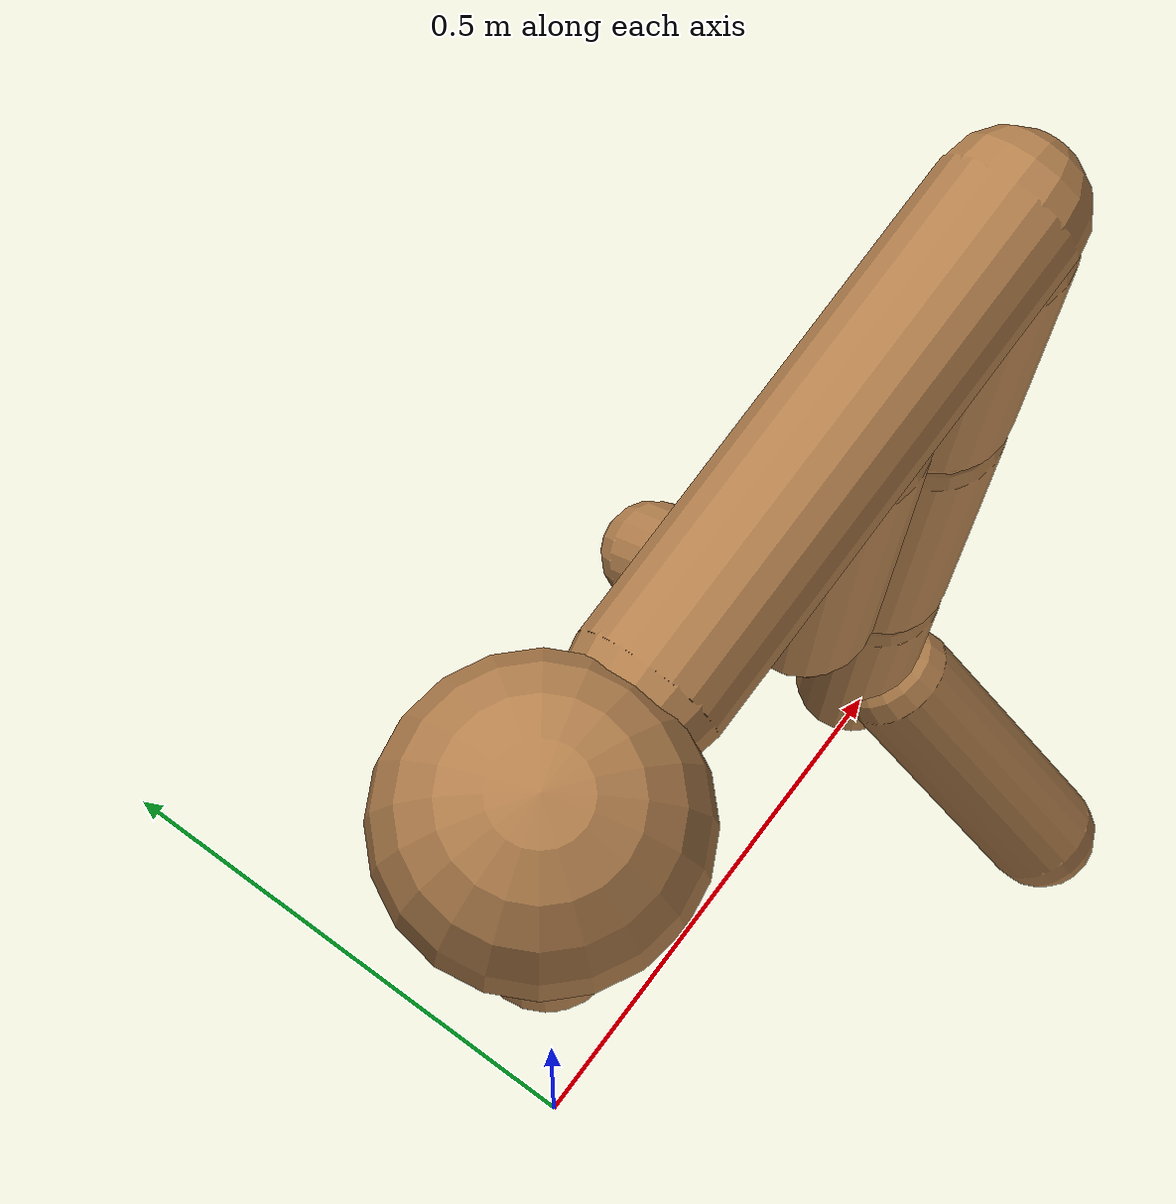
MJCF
<?xml version='1.0' encoding='UTF-8'?>
<!-- Universal Animal Template: unimal -->
<mujoco model="unimal">
  <compiler angle="degree"/>
  <size njmax="2000" nconmax="500"/>
  <option timestep=".005">
    <flag filterparent="disable"/>
  </option>
  <!-- Common defaults to make search space tractable -->
  <default>
    <!-- Define motor defaults -->
    <motor ctrlrange="-1 1" ctrllimited="true"/>
    <!-- Define joint defaults -->
    <default class="normal_joint">
      <joint type="hinge" damping="1" stiffness="1" armature="1" limited="true" range="-120 120" solimplimit="0 0.99 0.01"/>
    </default>
    <default class="walker_joint">
      <joint type="hinge" damping="0.2" stiffness="1" armature=".01" limited="true" range="-120 120" solimplimit="0 0.99 0.01"/>
    </default>
    <default class="stiff_joint">
      <joint type="hinge" damping="5" stiffness="10" armature=".01" limited="true" solimplimit="0 0.99 0.01"/>
    </default>
    <default class="free">
      <joint limited="false" damping="0" armature="0" stiffness="0"/>
    </default>
    <default class="growth_site">
      <site size="1e-6 1e-6 1e-6"/>
    </default>
    <default class="torso_growth_site">
      <site size="1e-6 1e-6 1e-6"/>
    </default>
    <default class="mirror_growth_site">
      <site size="1e-6 1e-6 1e-6"/>
    </default>
    <default class="btm_pos_site">
      <site size="1e-6 1e-6 1e-6"/>
    </default>
    <default class="box_face_site">
      <site size="1e-6 1e-6 1e-6"/>
    </default>
    <default class="imu_vel">
      <site type="box" size="0.05" rgba="1 0 0 0"/>
    </default>
    <default class="touch_site">
      <site group="3" rgba="0 0 1 .3"/>
    </default>
    <default class="food_site">
      <site material="food" size="0.15"/>
    </default>
    <!-- Define geom defaults -->
    <geom type="capsule" condim="3" friction="0.7 0.1 0.1" material="self"/>
  </default>
  <worldbody>
    <light diffuse="1 1 1" directional="true" exponent="1" pos="0 0 8" specular="0.1 0.1 0.1" dir="0 0 -1"/>
    <!-- Programatically generated xml goes here -->
    <body name="torso/0" pos="0 0 1.6">
      <joint name="root" type="free" class="free"/>
      <site name="root" class="imu_vel"/>
      <geom name="torso/0" type="sphere" size="0.1" condim="3" density="900"/>
      <camera name="side" pos="0 -7 2" xyaxes="1 0 0 0 1 2" mode="trackcom"/>
      <site name="torso/0" class="growth_site" pos="0 0 0"/>
      <site name="torso/btm_pos/0" class="btm_pos_site" pos="0 0 -0.1"/>
      <site name="torso/touch/0" class="touch_site" size="0.11"/>
      <site name="torso/vertical/0" class="torso_growth_site" pos="0 0 -0.1"/>
      <body name="limb/6" pos="0.1 0.0 0.0">
        <joint name="limbx/6" type="hinge" class="normal_joint" range="-30 0" pos="-0.05 0.0 0.0" axis="0.0 0.0 1.0"/>
        <joint name="limby/6" type="hinge" class="normal_joint" range="-90 0" pos="-0.05 0.0 0.0" axis="-0.0 1.0 0.0"/>
        <geom name="limb/6" type="capsule" fromto="0.0 0.0 0.0 0.35 0.0 0.0" size="0.05" density="800"/>
        <site name="limb/mid/6" class="growth_site" pos="0.2 0.0 0.0"/>
        <site name="limb/btm/6" class="growth_site" pos="0.35 0.0 0.0"/>
        <site name="limb/btm_pos/6" class="btm_pos_site" pos="0.35 0.0 0.0"/>
        <site name="limb/touch/6" class="touch_site" size="0.060000000000000005" fromto="0.0 0.0 0.0 0.35 0.0 0.0" type="capsule"/>
        <body name="limb/16" pos="0.35 0.0 -0.05">
          <joint name="limbx/16" type="hinge" class="normal_joint" range="-90 0" pos="0.0 0.0 0.05" axis="1.0 0.0 0.0"/>
          <joint name="limby/16" type="hinge" class="normal_joint" range="-30 0" pos="0.0 0.0 0.05" axis="0.0 1.0 0.0"/>
          <geom name="limb/16" type="capsule" fromto="0.0 0.0 0.0 0.0 0.0 -0.35" size="0.05" density="800"/>
          <site name="limb/mid/16" class="growth_site" pos="0.0 0.0 -0.2"/>
          <site name="limb/btm/16" class="growth_site" pos="0.0 0.0 -0.35"/>
          <site name="limb/btm_pos/16" class="btm_pos_site" pos="0.0 0.0 -0.35"/>
          <site name="limb/touch/16" class="touch_site" size="0.060000000000000005" fromto="0.0 0.0 0.0 0.0 0.0 -0.35" type="capsule"/>
          <body name="limb/17" pos="0.0 0.0 -0.39999999999999997">
            <joint name="limby/17" type="hinge" class="normal_joint" range="0 60" pos="0.0 0.0 0.05" axis="0.0 1.0 0.0"/>
            <geom name="limb/17" type="capsule" fromto="0.0 0.0 0.0 0.0 0.0 -0.45" size="0.05" density="800"/>
            <site name="limb/mid/17" class="growth_site" pos="0.0 0.0 -0.25"/>
            <site name="limb/btm/17" class="growth_site" pos="0.0 0.0 -0.45"/>
            <site name="limb/btm_pos/17" class="btm_pos_site" pos="0.0 0.0 -0.45"/>
            <site name="limb/touch/17" class="touch_site" size="0.060000000000000005" fromto="0.0 0.0 0.0 0.0 0.0 -0.45" type="capsule"/>
            <body name="limb/18" pos="0.0 0.0 -0.5">
              <joint name="limbx/18" type="hinge" class="normal_joint" range="-30 60" pos="0.0 0.0 0.05" axis="1.0 0.0 0.0"/>
              <geom name="limb/18" type="capsule" fromto="0.0 0.0 0.0 0.0 0.0 -0.35" size="0.05" density="800"/>
              <site name="limb/mid/18" class="growth_site" pos="0.0 0.0 -0.2"/>
              <site name="limb/btm/18" class="growth_site" pos="0.0 0.0 -0.35"/>
              <site name="limb/btm_pos/18" class="btm_pos_site" pos="0.0 0.0 -0.35"/>
              <site name="limb/touch/18" class="touch_site" size="0.060000000000000005" fromto="0.0 0.0 0.0 0.0 0.0 -0.35" type="capsule"/>
              <body name="limb/25" pos="0.0 0.04 -0.24000000000000002">
                <joint name="limbx/25" type="hinge" class="normal_joint" range="-90 0" pos="0.0 -0.04 0.04" axis="1.0 0.0 0.0"/>
                <geom name="limb/25" type="capsule" fromto="0.0 0.0 0.0 0.0 0.18 -0.18" size="0.05" density="800"/>
                <site name="limb/mid/25" class="mirror_growth_site" pos="0.0 0.11 -0.11"/>
                <site name="limb/btm/25" class="mirror_growth_site" pos="0.0 0.18 -0.18"/>
                <site name="limb/btm_pos/25" class="btm_pos_site" pos="0.0 0.21 -0.21"/>
                <site name="limb/touch/25" class="touch_site" size="0.060000000000000005" fromto="0.0 0.0 0.0 0.0 0.18 -0.18" type="capsule"/>
              </body>
              <body name="limb/26" pos="0.0 -0.04 -0.24000000000000002">
                <joint name="limbx/26" type="hinge" class="normal_joint" range="-90 0" pos="0.0 0.04 0.04" axis="1.0 0.0 -0.0"/>
                <geom name="limb/26" type="capsule" fromto="0.0 0.0 0.0 0.0 -0.18 -0.18" size="0.05" density="800"/>
                <site name="limb/mid/26" class="mirror_growth_site" pos="0.0 -0.11 -0.11"/>
                <site name="limb/btm/26" class="mirror_growth_site" pos="0.0 -0.18 -0.18"/>
                <site name="limb/btm_pos/26" class="btm_pos_site" pos="0.0 -0.21 -0.21"/>
                <site name="limb/touch/26" class="touch_site" size="0.060000000000000005" fromto="0.0 0.0 0.0 0.0 -0.18 -0.18" type="capsule"/>
              </body>
            </body>
          </body>
        </body>
        <body name="limb/24" pos="0.2 0.0 -0.05">
          <joint name="limbx/24" type="hinge" class="normal_joint" range="-45 0" pos="0.0 0.0 0.05" axis="1.0 0.0 0.0"/>
          <joint name="limby/24" type="hinge" class="normal_joint" range="-45 0" pos="0.0 0.0 0.05" axis="0.0 1.0 0.0"/>
          <geom name="limb/24" type="capsule" fromto="0.0 0.0 0.0 0.0 0.0 -0.45" size="0.05" density="800"/>
          <site name="limb/mid/24" class="growth_site" pos="0.0 0.0 -0.25"/>
          <site name="limb/btm/24" class="growth_site" pos="0.0 0.0 -0.45"/>
          <site name="limb/btm_pos/24" class="btm_pos_site" pos="0.0 0.0 -0.5"/>
          <site name="limb/touch/24" class="touch_site" size="0.060000000000000005" fromto="0.0 0.0 0.0 0.0 0.0 -0.45" type="capsule"/>
        </body>
      </body>
      <body name="limb/19" pos="0.0 0.0 -0.1">
        <joint name="limbx/19" type="hinge" class="normal_joint" range="-30 60" pos="0.0 0.0 0.05" axis="1.0 0.0 0.0"/>
        <joint name="limby/19" type="hinge" class="normal_joint" range="-45 45" pos="0.0 0.0 0.05" axis="0.0 1.0 0.0"/>
        <geom name="limb/19" type="capsule" fromto="0.0 0.0 0.0 0.0 0.0 -0.35" size="0.05" density="800"/>
        <site name="limb/mid/19" class="growth_site" pos="0.0 0.0 -0.2"/>
        <site name="limb/btm/19" class="growth_site" pos="0.0 0.0 -0.35"/>
        <site name="limb/btm_pos/19" class="btm_pos_site" pos="0.0 0.0 -0.35"/>
        <site name="limb/touch/19" class="touch_site" size="0.060000000000000005" fromto="0.0 0.0 0.0 0.0 0.0 -0.35" type="capsule"/>
      </body>
    </body>
  </worldbody>
  <actuator>
    <motor joint="limbx/6" gear="150" name="limbx/6"/>
    <motor joint="limby/6" gear="300" name="limby/6"/>
    <motor joint="limbx/16" gear="250" name="limbx/16"/>
    <motor joint="limby/16" gear="150" name="limby/16"/>
    <motor joint="limby/17" gear="150" name="limby/17"/>
    <motor joint="limbx/18" gear="300" name="limbx/18"/>
    <motor joint="limbx/25" gear="300" name="limbx/25"/>
    <motor joint="limbx/26" gear="300" name="limbx/26"/>
    <motor joint="limbx/24" gear="250" name="limbx/24"/>
    <motor joint="limby/24" gear="250" name="limby/24"/>
    <motor joint="limbx/19" gear="250" name="limbx/19"/>
    <motor joint="limby/19" gear="200" name="limby/19"/>
  </actuator>
  <sensor>
    <accelerometer name="torso_accel" site="root"/>
    <gyro name="torso_gyro" site="root"/>
    <velocimeter name="torso_vel" site="root"/>
    <subtreeangmom name="unimal_am" body="torso/0"/>
    <touch name="torso/0" site="torso/touch/0"/>
    <touch name="limb/6" site="limb/touch/6"/>
    <touch name="limb/16" site="limb/touch/16"/>
    <touch name="limb/17" site="limb/touch/17"/>
    <touch name="limb/18" site="limb/touch/18"/>
    <touch name="limb/25" site="limb/touch/25"/>
    <touch name="limb/26" site="limb/touch/26"/>
    <touch name="limb/24" site="limb/touch/24"/>
    <touch name="limb/19" site="limb/touch/19"/>
  </sensor>
  <!-- Add hfield assets -->
  <asset/>
  <!-- List of contacts to exclude -->
  <contact>
    <exclude name="limb/25:limb/26" body1="limb/25" body2="limb/26"/>
  </contact>
  <!-- Define material, texture etc -->
  <asset>
    <material name="grid" texture="grid" texrepeat="1 1" texuniform="true" reflectance="0.1"/>
    <material name="hfield" texture="hfield" texrepeat="1 1" texuniform="true" reflectance="0.1"/>
    <material name="wall" texture="wall" texrepeat="1 1" texuniform="true" reflectance=".5"/>
    <material name="platform" texture="platform" texrepeat="1 1" texuniform="true" reflectance=".5"/>
    <material name="boundary" texture="boundary" texrepeat="1 1" texuniform="true" reflectance=".5"/>
    <material name="jump" texture="jump" texrepeat="1 1" texuniform="true" reflectance=".5"/>
    <material name="goal" rgba="1 0 0 1"/>
    <material name="food" rgba="0 0 1 1" emission="1"/>
    <material name="init_position" rgba="0 1 0 0.7"/>
    <material name="self" rgba=".7 .5 .3 1"/>
    <material name="self_invisible" rgba=".7 .5 .3 0"/>
    <material name="self_default" rgba=".7 .5 .3 1"/>
    <material name="self_highlight" rgba="0 .5 .3 1"/>
    <material name="effector" rgba=".7 .4 .2 1"/>
    <material name="effector_default" rgba=".7 .4 .2 1"/>
    <material name="effector_highlight" rgba="0 .5 .3 1"/>
    <material name="decoration" rgba=".3 .5 .7 1"/>
    <material name="eye" rgba="0 .2 1 1"/>
    <material name="target" rgba=".6 .3 .3 1"/>
    <material name="target_default" rgba=".6 .3 .3 1"/>
    <material name="target_highlight" rgba=".6 .3 .3 .4"/>
    <material name="site" rgba=".5 .5 .5 .3"/>
    <material name="ball" texture="ball"/>
  </asset>
  <asset>
    <texture name="grid" type="2d" builtin="checker" rgb1="0.4 0.4 0.4" rgb2="0.4 0.4 0.4" width="300" height="300" mark="edge" markrgb="0.2 0.2 0.2"/>
    <texture name="hfield" type="2d" builtin="checker" rgb1="0.4 0.4 0.4" rgb2="0.4 0.4 0.4" width="300" height="300" mark="edge" markrgb="0.2 0.2 0.2"/>
    <texture name="wall" type="2d" builtin="flat" rgb1="0.9 0.7 0" rgb2="0.9 0.7 0" width="300" height="300"/>
    <texture name="platform" type="2d" builtin="flat" rgb1="0.3 0 0.8" rgb2="0.3 0 0.8" width="300" height="300"/>
    <texture name="boundary" type="2d" builtin="flat" rgb1="0.3 0.3 0.3" rgb2="0.3 0.3 0.3" width="300" height="300"/>
    <texture name="jump" type="2d" builtin="flat" rgb1="0.3 0.3 0.3" rgb2="0.3 0.3 0.3" width="300" height="300"/>
    <texture name="skybox" type="skybox" builtin="gradient" rgb1="1 1 1" rgb2="0.6 0.6 0.6" width="800" height="800"/>
    <texture name="ball" builtin="checker" mark="cross" width="151" height="151" rgb1="0.1 0.1 0.1" rgb2="0.9 0.9 0.9" markrgb="1 1 1"/>
  </asset>
  <visual>
    <headlight ambient="0.6 0.6 0.6" diffuse="0.3 0.3 0.3" specular="0 0 0"/>
    <map znear=".01" shadowclip="0.5"/>
    <quality shadowsize="16384"/>
  </visual>
</mujoco>
